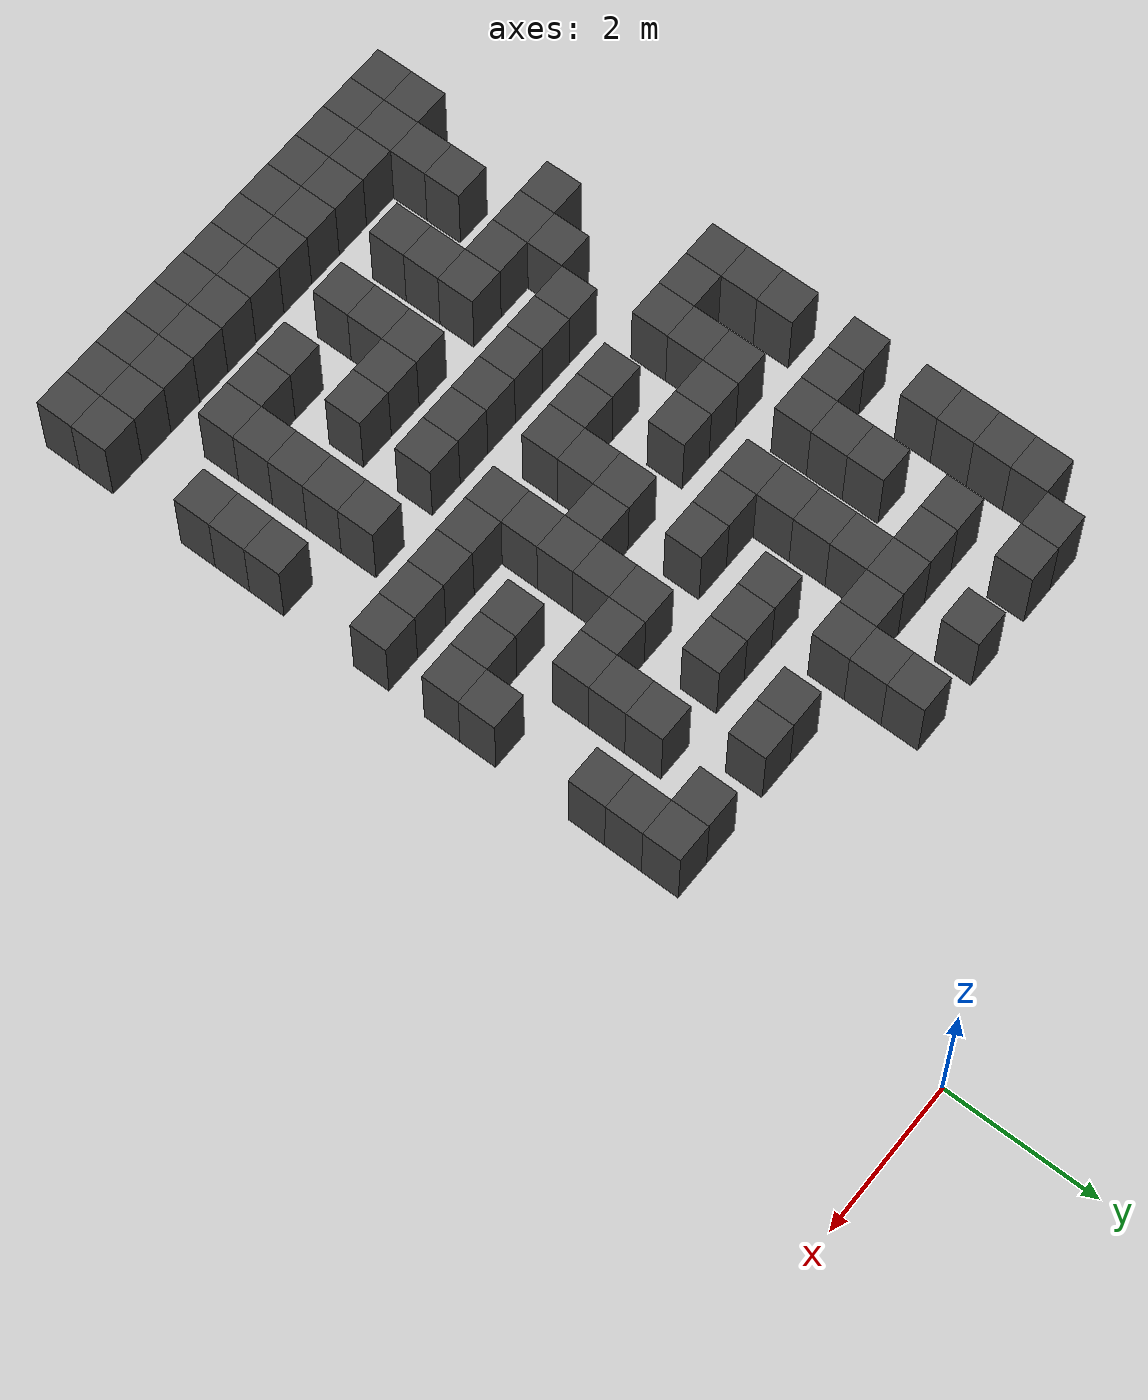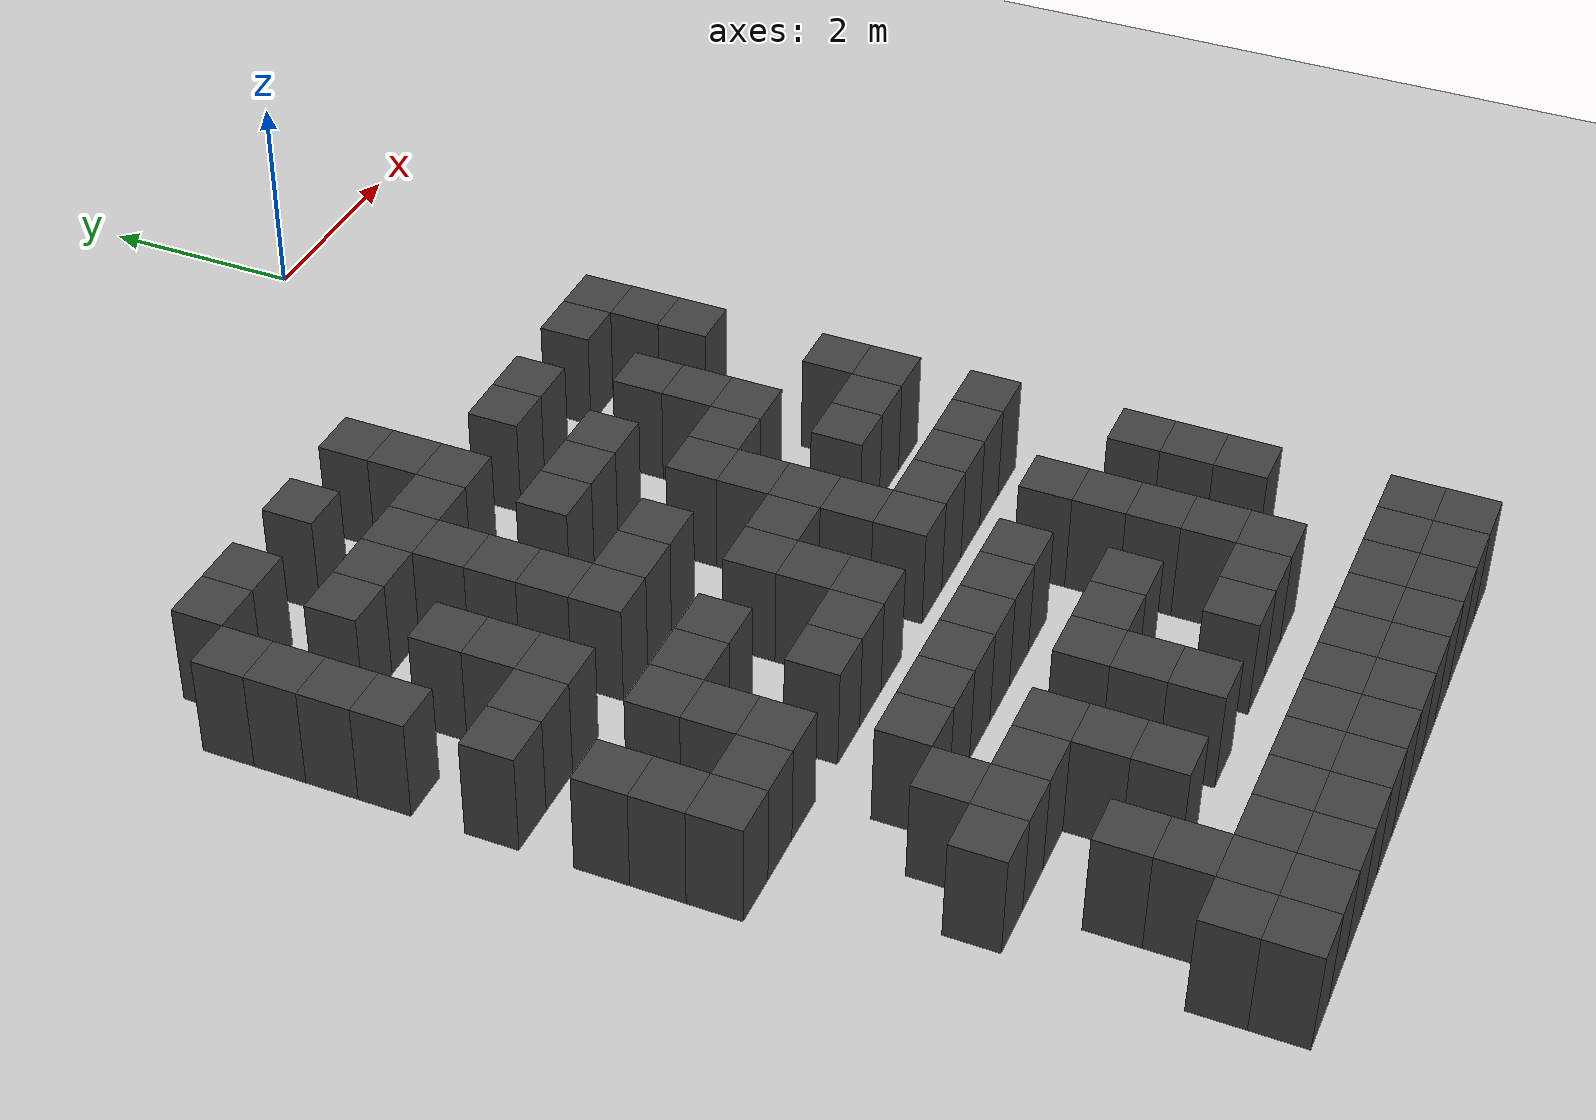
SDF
<sdf version="1.7">
 <world name="map_15293">
  <model name="ground_plane">
   <static>true</static>
   <link name="link">
    <collision name="collision">
     <geometry><plane><normal>0 0 1</normal><size>200 200</size></plane></geometry>
    </collision>
    <visual name="visual">
     <geometry><plane><normal>0 0 1</normal><size>200 200</size></plane></geometry>
     <material><ambient>0.8 0.8 0.8 1</ambient><diffuse>0.8 0.8 0.8 1</diffuse></material>
    </visual>
   </link>
  </model>
  <model name="maze_environment">
   <static>true</static>
   <link name="wall_709">
    <pose>-5.750 -2.750 0.500 0 0 0</pose>
    <collision name="col"><geometry><box><size>0.5 0.5 1.0</size></box></geometry></collision>
    <visual name="vis">
     <geometry><box><size>0.5 0.5 1.0</size></box></geometry>
     <material><ambient>0.15 0.15 0.15 1</ambient><diffuse>0.25 0.25 0.25 1</diffuse></material>
    </visual>
   </link>
   <link name="wall_710">
    <pose>-5.250 -2.750 0.500 0 0 0</pose>
    <collision name="col"><geometry><box><size>0.5 0.5 1.0</size></box></geometry></collision>
    <visual name="vis">
     <geometry><box><size>0.5 0.5 1.0</size></box></geometry>
     <material><ambient>0.15 0.15 0.15 1</ambient><diffuse>0.25 0.25 0.25 1</diffuse></material>
    </visual>
   </link>
   <link name="wall_711">
    <pose>-4.250 -2.750 0.500 0 0 0</pose>
    <collision name="col"><geometry><box><size>0.5 0.5 1.0</size></box></geometry></collision>
    <visual name="vis">
     <geometry><box><size>0.5 0.5 1.0</size></box></geometry>
     <material><ambient>0.15 0.15 0.15 1</ambient><diffuse>0.25 0.25 0.25 1</diffuse></material>
    </visual>
   </link>
   <link name="wall_712">
    <pose>-3.250 -2.750 0.500 0 0 0</pose>
    <collision name="col"><geometry><box><size>0.5 0.5 1.0</size></box></geometry></collision>
    <visual name="vis">
     <geometry><box><size>0.5 0.5 1.0</size></box></geometry>
     <material><ambient>0.15 0.15 0.15 1</ambient><diffuse>0.25 0.25 0.25 1</diffuse></material>
    </visual>
   </link>
   <link name="wall_742">
    <pose>-6.250 -3.250 0.500 0 0 0</pose>
    <collision name="col"><geometry><box><size>0.5 0.5 1.0</size></box></geometry></collision>
    <visual name="vis">
     <geometry><box><size>0.5 0.5 1.0</size></box></geometry>
     <material><ambient>0.15 0.15 0.15 1</ambient><diffuse>0.25 0.25 0.25 1</diffuse></material>
    </visual>
   </link>
   <link name="wall_743">
    <pose>-3.250 -3.250 0.500 0 0 0</pose>
    <collision name="col"><geometry><box><size>0.5 0.5 1.0</size></box></geometry></collision>
    <visual name="vis">
     <geometry><box><size>0.5 0.5 1.0</size></box></geometry>
     <material><ambient>0.15 0.15 0.15 1</ambient><diffuse>0.25 0.25 0.25 1</diffuse></material>
    </visual>
   </link>
   <link name="wall_757">
    <pose>-6.250 -3.750 0.500 0 0 0</pose>
    <collision name="col"><geometry><box><size>0.5 0.5 1.0</size></box></geometry></collision>
    <visual name="vis">
     <geometry><box><size>0.5 0.5 1.0</size></box></geometry>
     <material><ambient>0.15 0.15 0.15 1</ambient><diffuse>0.25 0.25 0.25 1</diffuse></material>
    </visual>
   </link>
   <link name="wall_758">
    <pose>-5.250 -3.750 0.500 0 0 0</pose>
    <collision name="col"><geometry><box><size>0.5 0.5 1.0</size></box></geometry></collision>
    <visual name="vis">
     <geometry><box><size>0.5 0.5 1.0</size></box></geometry>
     <material><ambient>0.15 0.15 0.15 1</ambient><diffuse>0.25 0.25 0.25 1</diffuse></material>
    </visual>
   </link>
   <link name="wall_759">
    <pose>-4.750 -3.750 0.500 0 0 0</pose>
    <collision name="col"><geometry><box><size>0.5 0.5 1.0</size></box></geometry></collision>
    <visual name="vis">
     <geometry><box><size>0.5 0.5 1.0</size></box></geometry>
     <material><ambient>0.15 0.15 0.15 1</ambient><diffuse>0.25 0.25 0.25 1</diffuse></material>
    </visual>
   </link>
   <link name="wall_760">
    <pose>-4.250 -3.750 0.500 0 0 0</pose>
    <collision name="col"><geometry><box><size>0.5 0.5 1.0</size></box></geometry></collision>
    <visual name="vis">
     <geometry><box><size>0.5 0.5 1.0</size></box></geometry>
     <material><ambient>0.15 0.15 0.15 1</ambient><diffuse>0.25 0.25 0.25 1</diffuse></material>
    </visual>
   </link>
   <link name="wall_761">
    <pose>-3.750 -3.750 0.500 0 0 0</pose>
    <collision name="col"><geometry><box><size>0.5 0.5 1.0</size></box></geometry></collision>
    <visual name="vis">
     <geometry><box><size>0.5 0.5 1.0</size></box></geometry>
     <material><ambient>0.15 0.15 0.15 1</ambient><diffuse>0.25 0.25 0.25 1</diffuse></material>
    </visual>
   </link>
   <link name="wall_762">
    <pose>-3.250 -3.750 0.500 0 0 0</pose>
    <collision name="col"><geometry><box><size>0.5 0.5 1.0</size></box></geometry></collision>
    <visual name="vis">
     <geometry><box><size>0.5 0.5 1.0</size></box></geometry>
     <material><ambient>0.15 0.15 0.15 1</ambient><diffuse>0.25 0.25 0.25 1</diffuse></material>
    </visual>
   </link>
   <link name="wall_763">
    <pose>-2.250 -3.750 0.500 0 0 0</pose>
    <collision name="col"><geometry><box><size>0.5 0.5 1.0</size></box></geometry></collision>
    <visual name="vis">
     <geometry><box><size>0.5 0.5 1.0</size></box></geometry>
     <material><ambient>0.15 0.15 0.15 1</ambient><diffuse>0.25 0.25 0.25 1</diffuse></material>
    </visual>
   </link>
   <link name="wall_764">
    <pose>-1.750 -3.750 0.500 0 0 0</pose>
    <collision name="col"><geometry><box><size>0.5 0.5 1.0</size></box></geometry></collision>
    <visual name="vis">
     <geometry><box><size>0.5 0.5 1.0</size></box></geometry>
     <material><ambient>0.15 0.15 0.15 1</ambient><diffuse>0.25 0.25 0.25 1</diffuse></material>
    </visual>
   </link>
   <link name="wall_765">
    <pose>-0.750 -3.750 0.500 0 0 0</pose>
    <collision name="col"><geometry><box><size>0.5 0.5 1.0</size></box></geometry></collision>
    <visual name="vis">
     <geometry><box><size>0.5 0.5 1.0</size></box></geometry>
     <material><ambient>0.15 0.15 0.15 1</ambient><diffuse>0.25 0.25 0.25 1</diffuse></material>
    </visual>
   </link>
   <link name="wall_766">
    <pose>-0.250 -3.750 0.500 0 0 0</pose>
    <collision name="col"><geometry><box><size>0.5 0.5 1.0</size></box></geometry></collision>
    <visual name="vis">
     <geometry><box><size>0.5 0.5 1.0</size></box></geometry>
     <material><ambient>0.15 0.15 0.15 1</ambient><diffuse>0.25 0.25 0.25 1</diffuse></material>
    </visual>
   </link>
   <link name="wall_782">
    <pose>-6.250 -4.250 0.500 0 0 0</pose>
    <collision name="col"><geometry><box><size>0.5 0.5 1.0</size></box></geometry></collision>
    <visual name="vis">
     <geometry><box><size>0.5 0.5 1.0</size></box></geometry>
     <material><ambient>0.15 0.15 0.15 1</ambient><diffuse>0.25 0.25 0.25 1</diffuse></material>
    </visual>
   </link>
   <link name="wall_783">
    <pose>-4.250 -4.250 0.500 0 0 0</pose>
    <collision name="col"><geometry><box><size>0.5 0.5 1.0</size></box></geometry></collision>
    <visual name="vis">
     <geometry><box><size>0.5 0.5 1.0</size></box></geometry>
     <material><ambient>0.15 0.15 0.15 1</ambient><diffuse>0.25 0.25 0.25 1</diffuse></material>
    </visual>
   </link>
   <link name="wall_784">
    <pose>-0.250 -4.250 0.500 0 0 0</pose>
    <collision name="col"><geometry><box><size>0.5 0.5 1.0</size></box></geometry></collision>
    <visual name="vis">
     <geometry><box><size>0.5 0.5 1.0</size></box></geometry>
     <material><ambient>0.15 0.15 0.15 1</ambient><diffuse>0.25 0.25 0.25 1</diffuse></material>
    </visual>
   </link>
   <link name="wall_798">
    <pose>-6.250 -4.750 0.500 0 0 0</pose>
    <collision name="col"><geometry><box><size>0.5 0.5 1.0</size></box></geometry></collision>
    <visual name="vis">
     <geometry><box><size>0.5 0.5 1.0</size></box></geometry>
     <material><ambient>0.15 0.15 0.15 1</ambient><diffuse>0.25 0.25 0.25 1</diffuse></material>
    </visual>
   </link>
   <link name="wall_799">
    <pose>-5.250 -4.750 0.500 0 0 0</pose>
    <collision name="col"><geometry><box><size>0.5 0.5 1.0</size></box></geometry></collision>
    <visual name="vis">
     <geometry><box><size>0.5 0.5 1.0</size></box></geometry>
     <material><ambient>0.15 0.15 0.15 1</ambient><diffuse>0.25 0.25 0.25 1</diffuse></material>
    </visual>
   </link>
   <link name="wall_800">
    <pose>-4.250 -4.750 0.500 0 0 0</pose>
    <collision name="col"><geometry><box><size>0.5 0.5 1.0</size></box></geometry></collision>
    <visual name="vis">
     <geometry><box><size>0.5 0.5 1.0</size></box></geometry>
     <material><ambient>0.15 0.15 0.15 1</ambient><diffuse>0.25 0.25 0.25 1</diffuse></material>
    </visual>
   </link>
   <link name="wall_801">
    <pose>-3.250 -4.750 0.500 0 0 0</pose>
    <collision name="col"><geometry><box><size>0.5 0.5 1.0</size></box></geometry></collision>
    <visual name="vis">
     <geometry><box><size>0.5 0.5 1.0</size></box></geometry>
     <material><ambient>0.15 0.15 0.15 1</ambient><diffuse>0.25 0.25 0.25 1</diffuse></material>
    </visual>
   </link>
   <link name="wall_802">
    <pose>-2.750 -4.750 0.500 0 0 0</pose>
    <collision name="col"><geometry><box><size>0.5 0.5 1.0</size></box></geometry></collision>
    <visual name="vis">
     <geometry><box><size>0.5 0.5 1.0</size></box></geometry>
     <material><ambient>0.15 0.15 0.15 1</ambient><diffuse>0.25 0.25 0.25 1</diffuse></material>
    </visual>
   </link>
   <link name="wall_803">
    <pose>-2.250 -4.750 0.500 0 0 0</pose>
    <collision name="col"><geometry><box><size>0.5 0.5 1.0</size></box></geometry></collision>
    <visual name="vis">
     <geometry><box><size>0.5 0.5 1.0</size></box></geometry>
     <material><ambient>0.15 0.15 0.15 1</ambient><diffuse>0.25 0.25 0.25 1</diffuse></material>
    </visual>
   </link>
   <link name="wall_804">
    <pose>-1.250 -4.750 0.500 0 0 0</pose>
    <collision name="col"><geometry><box><size>0.5 0.5 1.0</size></box></geometry></collision>
    <visual name="vis">
     <geometry><box><size>0.5 0.5 1.0</size></box></geometry>
     <material><ambient>0.15 0.15 0.15 1</ambient><diffuse>0.25 0.25 0.25 1</diffuse></material>
    </visual>
   </link>
   <link name="wall_805">
    <pose>-0.250 -4.750 0.500 0 0 0</pose>
    <collision name="col"><geometry><box><size>0.5 0.5 1.0</size></box></geometry></collision>
    <visual name="vis">
     <geometry><box><size>0.5 0.5 1.0</size></box></geometry>
     <material><ambient>0.15 0.15 0.15 1</ambient><diffuse>0.25 0.25 0.25 1</diffuse></material>
    </visual>
   </link>
   <link name="wall_822">
    <pose>-5.250 -5.250 0.500 0 0 0</pose>
    <collision name="col"><geometry><box><size>0.5 0.5 1.0</size></box></geometry></collision>
    <visual name="vis">
     <geometry><box><size>0.5 0.5 1.0</size></box></geometry>
     <material><ambient>0.15 0.15 0.15 1</ambient><diffuse>0.25 0.25 0.25 1</diffuse></material>
    </visual>
   </link>
   <link name="wall_823">
    <pose>-4.250 -5.250 0.500 0 0 0</pose>
    <collision name="col"><geometry><box><size>0.5 0.5 1.0</size></box></geometry></collision>
    <visual name="vis">
     <geometry><box><size>0.5 0.5 1.0</size></box></geometry>
     <material><ambient>0.15 0.15 0.15 1</ambient><diffuse>0.25 0.25 0.25 1</diffuse></material>
    </visual>
   </link>
   <link name="wall_824">
    <pose>-1.250 -5.250 0.500 0 0 0</pose>
    <collision name="col"><geometry><box><size>0.5 0.5 1.0</size></box></geometry></collision>
    <visual name="vis">
     <geometry><box><size>0.5 0.5 1.0</size></box></geometry>
     <material><ambient>0.15 0.15 0.15 1</ambient><diffuse>0.25 0.25 0.25 1</diffuse></material>
    </visual>
   </link>
   <link name="wall_844">
    <pose>-6.250 -5.750 0.500 0 0 0</pose>
    <collision name="col"><geometry><box><size>0.5 0.5 1.0</size></box></geometry></collision>
    <visual name="vis">
     <geometry><box><size>0.5 0.5 1.0</size></box></geometry>
     <material><ambient>0.15 0.15 0.15 1</ambient><diffuse>0.25 0.25 0.25 1</diffuse></material>
    </visual>
   </link>
   <link name="wall_845">
    <pose>-5.750 -5.750 0.500 0 0 0</pose>
    <collision name="col"><geometry><box><size>0.5 0.5 1.0</size></box></geometry></collision>
    <visual name="vis">
     <geometry><box><size>0.5 0.5 1.0</size></box></geometry>
     <material><ambient>0.15 0.15 0.15 1</ambient><diffuse>0.25 0.25 0.25 1</diffuse></material>
    </visual>
   </link>
   <link name="wall_846">
    <pose>-5.250 -5.750 0.500 0 0 0</pose>
    <collision name="col"><geometry><box><size>0.5 0.5 1.0</size></box></geometry></collision>
    <visual name="vis">
     <geometry><box><size>0.5 0.5 1.0</size></box></geometry>
     <material><ambient>0.15 0.15 0.15 1</ambient><diffuse>0.25 0.25 0.25 1</diffuse></material>
    </visual>
   </link>
   <link name="wall_847">
    <pose>-4.250 -5.750 0.500 0 0 0</pose>
    <collision name="col"><geometry><box><size>0.5 0.5 1.0</size></box></geometry></collision>
    <visual name="vis">
     <geometry><box><size>0.5 0.5 1.0</size></box></geometry>
     <material><ambient>0.15 0.15 0.15 1</ambient><diffuse>0.25 0.25 0.25 1</diffuse></material>
    </visual>
   </link>
   <link name="wall_848">
    <pose>-3.750 -5.750 0.500 0 0 0</pose>
    <collision name="col"><geometry><box><size>0.5 0.5 1.0</size></box></geometry></collision>
    <visual name="vis">
     <geometry><box><size>0.5 0.5 1.0</size></box></geometry>
     <material><ambient>0.15 0.15 0.15 1</ambient><diffuse>0.25 0.25 0.25 1</diffuse></material>
    </visual>
   </link>
   <link name="wall_849">
    <pose>-3.250 -5.750 0.500 0 0 0</pose>
    <collision name="col"><geometry><box><size>0.5 0.5 1.0</size></box></geometry></collision>
    <visual name="vis">
     <geometry><box><size>0.5 0.5 1.0</size></box></geometry>
     <material><ambient>0.15 0.15 0.15 1</ambient><diffuse>0.25 0.25 0.25 1</diffuse></material>
    </visual>
   </link>
   <link name="wall_850">
    <pose>-2.250 -5.750 0.500 0 0 0</pose>
    <collision name="col"><geometry><box><size>0.5 0.5 1.0</size></box></geometry></collision>
    <visual name="vis">
     <geometry><box><size>0.5 0.5 1.0</size></box></geometry>
     <material><ambient>0.15 0.15 0.15 1</ambient><diffuse>0.25 0.25 0.25 1</diffuse></material>
    </visual>
   </link>
   <link name="wall_851">
    <pose>-1.750 -5.750 0.500 0 0 0</pose>
    <collision name="col"><geometry><box><size>0.5 0.5 1.0</size></box></geometry></collision>
    <visual name="vis">
     <geometry><box><size>0.5 0.5 1.0</size></box></geometry>
     <material><ambient>0.15 0.15 0.15 1</ambient><diffuse>0.25 0.25 0.25 1</diffuse></material>
    </visual>
   </link>
   <link name="wall_852">
    <pose>-1.250 -5.750 0.500 0 0 0</pose>
    <collision name="col"><geometry><box><size>0.5 0.5 1.0</size></box></geometry></collision>
    <visual name="vis">
     <geometry><box><size>0.5 0.5 1.0</size></box></geometry>
     <material><ambient>0.15 0.15 0.15 1</ambient><diffuse>0.25 0.25 0.25 1</diffuse></material>
    </visual>
   </link>
   <link name="wall_871">
    <pose>-2.250 -6.250 0.500 0 0 0</pose>
    <collision name="col"><geometry><box><size>0.5 0.5 1.0</size></box></geometry></collision>
    <visual name="vis">
     <geometry><box><size>0.5 0.5 1.0</size></box></geometry>
     <material><ambient>0.15 0.15 0.15 1</ambient><diffuse>0.25 0.25 0.25 1</diffuse></material>
    </visual>
   </link>
   <link name="wall_872">
    <pose>-0.250 -6.250 0.500 0 0 0</pose>
    <collision name="col"><geometry><box><size>0.5 0.5 1.0</size></box></geometry></collision>
    <visual name="vis">
     <geometry><box><size>0.5 0.5 1.0</size></box></geometry>
     <material><ambient>0.15 0.15 0.15 1</ambient><diffuse>0.25 0.25 0.25 1</diffuse></material>
    </visual>
   </link>
   <link name="wall_887">
    <pose>-6.250 -6.750 0.500 0 0 0</pose>
    <collision name="col"><geometry><box><size>0.5 0.5 1.0</size></box></geometry></collision>
    <visual name="vis">
     <geometry><box><size>0.5 0.5 1.0</size></box></geometry>
     <material><ambient>0.15 0.15 0.15 1</ambient><diffuse>0.25 0.25 0.25 1</diffuse></material>
    </visual>
   </link>
   <link name="wall_888">
    <pose>-5.250 -6.750 0.500 0 0 0</pose>
    <collision name="col"><geometry><box><size>0.5 0.5 1.0</size></box></geometry></collision>
    <visual name="vis">
     <geometry><box><size>0.5 0.5 1.0</size></box></geometry>
     <material><ambient>0.15 0.15 0.15 1</ambient><diffuse>0.25 0.25 0.25 1</diffuse></material>
    </visual>
   </link>
   <link name="wall_889">
    <pose>-4.750 -6.750 0.500 0 0 0</pose>
    <collision name="col"><geometry><box><size>0.5 0.5 1.0</size></box></geometry></collision>
    <visual name="vis">
     <geometry><box><size>0.5 0.5 1.0</size></box></geometry>
     <material><ambient>0.15 0.15 0.15 1</ambient><diffuse>0.25 0.25 0.25 1</diffuse></material>
    </visual>
   </link>
   <link name="wall_890">
    <pose>-4.250 -6.750 0.500 0 0 0</pose>
    <collision name="col"><geometry><box><size>0.5 0.5 1.0</size></box></geometry></collision>
    <visual name="vis">
     <geometry><box><size>0.5 0.5 1.0</size></box></geometry>
     <material><ambient>0.15 0.15 0.15 1</ambient><diffuse>0.25 0.25 0.25 1</diffuse></material>
    </visual>
   </link>
   <link name="wall_891">
    <pose>-3.250 -6.750 0.500 0 0 0</pose>
    <collision name="col"><geometry><box><size>0.5 0.5 1.0</size></box></geometry></collision>
    <visual name="vis">
     <geometry><box><size>0.5 0.5 1.0</size></box></geometry>
     <material><ambient>0.15 0.15 0.15 1</ambient><diffuse>0.25 0.25 0.25 1</diffuse></material>
    </visual>
   </link>
   <link name="wall_892">
    <pose>-2.750 -6.750 0.500 0 0 0</pose>
    <collision name="col"><geometry><box><size>0.5 0.5 1.0</size></box></geometry></collision>
    <visual name="vis">
     <geometry><box><size>0.5 0.5 1.0</size></box></geometry>
     <material><ambient>0.15 0.15 0.15 1</ambient><diffuse>0.25 0.25 0.25 1</diffuse></material>
    </visual>
   </link>
   <link name="wall_893">
    <pose>-2.250 -6.750 0.500 0 0 0</pose>
    <collision name="col"><geometry><box><size>0.5 0.5 1.0</size></box></geometry></collision>
    <visual name="vis">
     <geometry><box><size>0.5 0.5 1.0</size></box></geometry>
     <material><ambient>0.15 0.15 0.15 1</ambient><diffuse>0.25 0.25 0.25 1</diffuse></material>
    </visual>
   </link>
   <link name="wall_894">
    <pose>-1.250 -6.750 0.500 0 0 0</pose>
    <collision name="col"><geometry><box><size>0.5 0.5 1.0</size></box></geometry></collision>
    <visual name="vis">
     <geometry><box><size>0.5 0.5 1.0</size></box></geometry>
     <material><ambient>0.15 0.15 0.15 1</ambient><diffuse>0.25 0.25 0.25 1</diffuse></material>
    </visual>
   </link>
   <link name="wall_895">
    <pose>-0.750 -6.750 0.500 0 0 0</pose>
    <collision name="col"><geometry><box><size>0.5 0.5 1.0</size></box></geometry></collision>
    <visual name="vis">
     <geometry><box><size>0.5 0.5 1.0</size></box></geometry>
     <material><ambient>0.15 0.15 0.15 1</ambient><diffuse>0.25 0.25 0.25 1</diffuse></material>
    </visual>
   </link>
   <link name="wall_896">
    <pose>-0.250 -6.750 0.500 0 0 0</pose>
    <collision name="col"><geometry><box><size>0.5 0.5 1.0</size></box></geometry></collision>
    <visual name="vis">
     <geometry><box><size>0.5 0.5 1.0</size></box></geometry>
     <material><ambient>0.15 0.15 0.15 1</ambient><diffuse>0.25 0.25 0.25 1</diffuse></material>
    </visual>
   </link>
   <link name="wall_918">
    <pose>-6.250 -7.250 0.500 0 0 0</pose>
    <collision name="col"><geometry><box><size>0.5 0.5 1.0</size></box></geometry></collision>
    <visual name="vis">
     <geometry><box><size>0.5 0.5 1.0</size></box></geometry>
     <material><ambient>0.15 0.15 0.15 1</ambient><diffuse>0.25 0.25 0.25 1</diffuse></material>
    </visual>
   </link>
   <link name="wall_919">
    <pose>-5.250 -7.250 0.500 0 0 0</pose>
    <collision name="col"><geometry><box><size>0.5 0.5 1.0</size></box></geometry></collision>
    <visual name="vis">
     <geometry><box><size>0.5 0.5 1.0</size></box></geometry>
     <material><ambient>0.15 0.15 0.15 1</ambient><diffuse>0.25 0.25 0.25 1</diffuse></material>
    </visual>
   </link>
   <link name="wall_920">
    <pose>-3.250 -7.250 0.500 0 0 0</pose>
    <collision name="col"><geometry><box><size>0.5 0.5 1.0</size></box></geometry></collision>
    <visual name="vis">
     <geometry><box><size>0.5 0.5 1.0</size></box></geometry>
     <material><ambient>0.15 0.15 0.15 1</ambient><diffuse>0.25 0.25 0.25 1</diffuse></material>
    </visual>
   </link>
   <link name="wall_921">
    <pose>-2.250 -7.250 0.500 0 0 0</pose>
    <collision name="col"><geometry><box><size>0.5 0.5 1.0</size></box></geometry></collision>
    <visual name="vis">
     <geometry><box><size>0.5 0.5 1.0</size></box></geometry>
     <material><ambient>0.15 0.15 0.15 1</ambient><diffuse>0.25 0.25 0.25 1</diffuse></material>
    </visual>
   </link>
   <link name="wall_932">
    <pose>-6.250 -7.750 0.500 0 0 0</pose>
    <collision name="col"><geometry><box><size>0.5 0.5 1.0</size></box></geometry></collision>
    <visual name="vis">
     <geometry><box><size>0.5 0.5 1.0</size></box></geometry>
     <material><ambient>0.15 0.15 0.15 1</ambient><diffuse>0.25 0.25 0.25 1</diffuse></material>
    </visual>
   </link>
   <link name="wall_933">
    <pose>-5.750 -7.750 0.500 0 0 0</pose>
    <collision name="col"><geometry><box><size>0.5 0.5 1.0</size></box></geometry></collision>
    <visual name="vis">
     <geometry><box><size>0.5 0.5 1.0</size></box></geometry>
     <material><ambient>0.15 0.15 0.15 1</ambient><diffuse>0.25 0.25 0.25 1</diffuse></material>
    </visual>
   </link>
   <link name="wall_934">
    <pose>-5.250 -7.750 0.500 0 0 0</pose>
    <collision name="col"><geometry><box><size>0.5 0.5 1.0</size></box></geometry></collision>
    <visual name="vis">
     <geometry><box><size>0.5 0.5 1.0</size></box></geometry>
     <material><ambient>0.15 0.15 0.15 1</ambient><diffuse>0.25 0.25 0.25 1</diffuse></material>
    </visual>
   </link>
   <link name="wall_935">
    <pose>-4.250 -7.750 0.500 0 0 0</pose>
    <collision name="col"><geometry><box><size>0.5 0.5 1.0</size></box></geometry></collision>
    <visual name="vis">
     <geometry><box><size>0.5 0.5 1.0</size></box></geometry>
     <material><ambient>0.15 0.15 0.15 1</ambient><diffuse>0.25 0.25 0.25 1</diffuse></material>
    </visual>
   </link>
   <link name="wall_936">
    <pose>-3.750 -7.750 0.500 0 0 0</pose>
    <collision name="col"><geometry><box><size>0.5 0.5 1.0</size></box></geometry></collision>
    <visual name="vis">
     <geometry><box><size>0.5 0.5 1.0</size></box></geometry>
     <material><ambient>0.15 0.15 0.15 1</ambient><diffuse>0.25 0.25 0.25 1</diffuse></material>
    </visual>
   </link>
   <link name="wall_937">
    <pose>-3.250 -7.750 0.500 0 0 0</pose>
    <collision name="col"><geometry><box><size>0.5 0.5 1.0</size></box></geometry></collision>
    <visual name="vis">
     <geometry><box><size>0.5 0.5 1.0</size></box></geometry>
     <material><ambient>0.15 0.15 0.15 1</ambient><diffuse>0.25 0.25 0.25 1</diffuse></material>
    </visual>
   </link>
   <link name="wall_938">
    <pose>-2.250 -7.750 0.500 0 0 0</pose>
    <collision name="col"><geometry><box><size>0.5 0.5 1.0</size></box></geometry></collision>
    <visual name="vis">
     <geometry><box><size>0.5 0.5 1.0</size></box></geometry>
     <material><ambient>0.15 0.15 0.15 1</ambient><diffuse>0.25 0.25 0.25 1</diffuse></material>
    </visual>
   </link>
   <link name="wall_939">
    <pose>-1.750 -7.750 0.500 0 0 0</pose>
    <collision name="col"><geometry><box><size>0.5 0.5 1.0</size></box></geometry></collision>
    <visual name="vis">
     <geometry><box><size>0.5 0.5 1.0</size></box></geometry>
     <material><ambient>0.15 0.15 0.15 1</ambient><diffuse>0.25 0.25 0.25 1</diffuse></material>
    </visual>
   </link>
   <link name="wall_940">
    <pose>-1.250 -7.750 0.500 0 0 0</pose>
    <collision name="col"><geometry><box><size>0.5 0.5 1.0</size></box></geometry></collision>
    <visual name="vis">
     <geometry><box><size>0.5 0.5 1.0</size></box></geometry>
     <material><ambient>0.15 0.15 0.15 1</ambient><diffuse>0.25 0.25 0.25 1</diffuse></material>
    </visual>
   </link>
   <link name="wall_941">
    <pose>-0.750 -7.750 0.500 0 0 0</pose>
    <collision name="col"><geometry><box><size>0.5 0.5 1.0</size></box></geometry></collision>
    <visual name="vis">
     <geometry><box><size>0.5 0.5 1.0</size></box></geometry>
     <material><ambient>0.15 0.15 0.15 1</ambient><diffuse>0.25 0.25 0.25 1</diffuse></material>
    </visual>
   </link>
   <link name="wall_942">
    <pose>-0.250 -7.750 0.500 0 0 0</pose>
    <collision name="col"><geometry><box><size>0.5 0.5 1.0</size></box></geometry></collision>
    <visual name="vis">
     <geometry><box><size>0.5 0.5 1.0</size></box></geometry>
     <material><ambient>0.15 0.15 0.15 1</ambient><diffuse>0.25 0.25 0.25 1</diffuse></material>
    </visual>
   </link>
   <link name="wall_983">
    <pose>-4.750 -8.750 0.500 0 0 0</pose>
    <collision name="col"><geometry><box><size>0.5 0.5 1.0</size></box></geometry></collision>
    <visual name="vis">
     <geometry><box><size>0.5 0.5 1.0</size></box></geometry>
     <material><ambient>0.15 0.15 0.15 1</ambient><diffuse>0.25 0.25 0.25 1</diffuse></material>
    </visual>
   </link>
   <link name="wall_984">
    <pose>-4.250 -8.750 0.500 0 0 0</pose>
    <collision name="col"><geometry><box><size>0.5 0.5 1.0</size></box></geometry></collision>
    <visual name="vis">
     <geometry><box><size>0.5 0.5 1.0</size></box></geometry>
     <material><ambient>0.15 0.15 0.15 1</ambient><diffuse>0.25 0.25 0.25 1</diffuse></material>
    </visual>
   </link>
   <link name="wall_985">
    <pose>-3.750 -8.750 0.500 0 0 0</pose>
    <collision name="col"><geometry><box><size>0.5 0.5 1.0</size></box></geometry></collision>
    <visual name="vis">
     <geometry><box><size>0.5 0.5 1.0</size></box></geometry>
     <material><ambient>0.15 0.15 0.15 1</ambient><diffuse>0.25 0.25 0.25 1</diffuse></material>
    </visual>
   </link>
   <link name="wall_986">
    <pose>-3.250 -8.750 0.500 0 0 0</pose>
    <collision name="col"><geometry><box><size>0.5 0.5 1.0</size></box></geometry></collision>
    <visual name="vis">
     <geometry><box><size>0.5 0.5 1.0</size></box></geometry>
     <material><ambient>0.15 0.15 0.15 1</ambient><diffuse>0.25 0.25 0.25 1</diffuse></material>
    </visual>
   </link>
   <link name="wall_987">
    <pose>-2.750 -8.750 0.500 0 0 0</pose>
    <collision name="col"><geometry><box><size>0.5 0.5 1.0</size></box></geometry></collision>
    <visual name="vis">
     <geometry><box><size>0.5 0.5 1.0</size></box></geometry>
     <material><ambient>0.15 0.15 0.15 1</ambient><diffuse>0.25 0.25 0.25 1</diffuse></material>
    </visual>
   </link>
   <link name="wall_988">
    <pose>-2.250 -8.750 0.500 0 0 0</pose>
    <collision name="col"><geometry><box><size>0.5 0.5 1.0</size></box></geometry></collision>
    <visual name="vis">
     <geometry><box><size>0.5 0.5 1.0</size></box></geometry>
     <material><ambient>0.15 0.15 0.15 1</ambient><diffuse>0.25 0.25 0.25 1</diffuse></material>
    </visual>
   </link>
   <link name="wall_989">
    <pose>-1.250 -8.750 0.500 0 0 0</pose>
    <collision name="col"><geometry><box><size>0.5 0.5 1.0</size></box></geometry></collision>
    <visual name="vis">
     <geometry><box><size>0.5 0.5 1.0</size></box></geometry>
     <material><ambient>0.15 0.15 0.15 1</ambient><diffuse>0.25 0.25 0.25 1</diffuse></material>
    </visual>
   </link>
   <link name="wall_1013">
    <pose>-5.250 -9.250 0.500 0 0 0</pose>
    <collision name="col"><geometry><box><size>0.5 0.5 1.0</size></box></geometry></collision>
    <visual name="vis">
     <geometry><box><size>0.5 0.5 1.0</size></box></geometry>
     <material><ambient>0.15 0.15 0.15 1</ambient><diffuse>0.25 0.25 0.25 1</diffuse></material>
    </visual>
   </link>
   <link name="wall_1014">
    <pose>-1.250 -9.250 0.500 0 0 0</pose>
    <collision name="col"><geometry><box><size>0.5 0.5 1.0</size></box></geometry></collision>
    <visual name="vis">
     <geometry><box><size>0.5 0.5 1.0</size></box></geometry>
     <material><ambient>0.15 0.15 0.15 1</ambient><diffuse>0.25 0.25 0.25 1</diffuse></material>
    </visual>
   </link>
   <link name="wall_1015">
    <pose>-0.250 -9.250 0.500 0 0 0</pose>
    <collision name="col"><geometry><box><size>0.5 0.5 1.0</size></box></geometry></collision>
    <visual name="vis">
     <geometry><box><size>0.5 0.5 1.0</size></box></geometry>
     <material><ambient>0.15 0.15 0.15 1</ambient><diffuse>0.25 0.25 0.25 1</diffuse></material>
    </visual>
   </link>
   <link name="wall_1031">
    <pose>-5.750 -9.750 0.500 0 0 0</pose>
    <collision name="col"><geometry><box><size>0.5 0.5 1.0</size></box></geometry></collision>
    <visual name="vis">
     <geometry><box><size>0.5 0.5 1.0</size></box></geometry>
     <material><ambient>0.15 0.15 0.15 1</ambient><diffuse>0.25 0.25 0.25 1</diffuse></material>
    </visual>
   </link>
   <link name="wall_1032">
    <pose>-5.250 -9.750 0.500 0 0 0</pose>
    <collision name="col"><geometry><box><size>0.5 0.5 1.0</size></box></geometry></collision>
    <visual name="vis">
     <geometry><box><size>0.5 0.5 1.0</size></box></geometry>
     <material><ambient>0.15 0.15 0.15 1</ambient><diffuse>0.25 0.25 0.25 1</diffuse></material>
    </visual>
   </link>
   <link name="wall_1033">
    <pose>-4.750 -9.750 0.500 0 0 0</pose>
    <collision name="col"><geometry><box><size>0.5 0.5 1.0</size></box></geometry></collision>
    <visual name="vis">
     <geometry><box><size>0.5 0.5 1.0</size></box></geometry>
     <material><ambient>0.15 0.15 0.15 1</ambient><diffuse>0.25 0.25 0.25 1</diffuse></material>
    </visual>
   </link>
   <link name="wall_1034">
    <pose>-4.250 -9.750 0.500 0 0 0</pose>
    <collision name="col"><geometry><box><size>0.5 0.5 1.0</size></box></geometry></collision>
    <visual name="vis">
     <geometry><box><size>0.5 0.5 1.0</size></box></geometry>
     <material><ambient>0.15 0.15 0.15 1</ambient><diffuse>0.25 0.25 0.25 1</diffuse></material>
    </visual>
   </link>
   <link name="wall_1035">
    <pose>-3.250 -9.750 0.500 0 0 0</pose>
    <collision name="col"><geometry><box><size>0.5 0.5 1.0</size></box></geometry></collision>
    <visual name="vis">
     <geometry><box><size>0.5 0.5 1.0</size></box></geometry>
     <material><ambient>0.15 0.15 0.15 1</ambient><diffuse>0.25 0.25 0.25 1</diffuse></material>
    </visual>
   </link>
   <link name="wall_1036">
    <pose>-2.750 -9.750 0.500 0 0 0</pose>
    <collision name="col"><geometry><box><size>0.5 0.5 1.0</size></box></geometry></collision>
    <visual name="vis">
     <geometry><box><size>0.5 0.5 1.0</size></box></geometry>
     <material><ambient>0.15 0.15 0.15 1</ambient><diffuse>0.25 0.25 0.25 1</diffuse></material>
    </visual>
   </link>
   <link name="wall_1037">
    <pose>-2.250 -9.750 0.500 0 0 0</pose>
    <collision name="col"><geometry><box><size>0.5 0.5 1.0</size></box></geometry></collision>
    <visual name="vis">
     <geometry><box><size>0.5 0.5 1.0</size></box></geometry>
     <material><ambient>0.15 0.15 0.15 1</ambient><diffuse>0.25 0.25 0.25 1</diffuse></material>
    </visual>
   </link>
   <link name="wall_1038">
    <pose>-1.250 -9.750 0.500 0 0 0</pose>
    <collision name="col"><geometry><box><size>0.5 0.5 1.0</size></box></geometry></collision>
    <visual name="vis">
     <geometry><box><size>0.5 0.5 1.0</size></box></geometry>
     <material><ambient>0.15 0.15 0.15 1</ambient><diffuse>0.25 0.25 0.25 1</diffuse></material>
    </visual>
   </link>
   <link name="wall_1039">
    <pose>-0.250 -9.750 0.500 0 0 0</pose>
    <collision name="col"><geometry><box><size>0.5 0.5 1.0</size></box></geometry></collision>
    <visual name="vis">
     <geometry><box><size>0.5 0.5 1.0</size></box></geometry>
     <material><ambient>0.15 0.15 0.15 1</ambient><diffuse>0.25 0.25 0.25 1</diffuse></material>
    </visual>
   </link>
   <link name="wall_1056">
    <pose>-4.250 -10.250 0.500 0 0 0</pose>
    <collision name="col"><geometry><box><size>0.5 0.5 1.0</size></box></geometry></collision>
    <visual name="vis">
     <geometry><box><size>0.5 0.5 1.0</size></box></geometry>
     <material><ambient>0.15 0.15 0.15 1</ambient><diffuse>0.25 0.25 0.25 1</diffuse></material>
    </visual>
   </link>
   <link name="wall_1057">
    <pose>-3.250 -10.250 0.500 0 0 0</pose>
    <collision name="col"><geometry><box><size>0.5 0.5 1.0</size></box></geometry></collision>
    <visual name="vis">
     <geometry><box><size>0.5 0.5 1.0</size></box></geometry>
     <material><ambient>0.15 0.15 0.15 1</ambient><diffuse>0.25 0.25 0.25 1</diffuse></material>
    </visual>
   </link>
   <link name="wall_1058">
    <pose>-1.250 -10.250 0.500 0 0 0</pose>
    <collision name="col"><geometry><box><size>0.5 0.5 1.0</size></box></geometry></collision>
    <visual name="vis">
     <geometry><box><size>0.5 0.5 1.0</size></box></geometry>
     <material><ambient>0.15 0.15 0.15 1</ambient><diffuse>0.25 0.25 0.25 1</diffuse></material>
    </visual>
   </link>
   <link name="wall_1059">
    <pose>-0.250 -10.250 0.500 0 0 0</pose>
    <collision name="col"><geometry><box><size>0.5 0.5 1.0</size></box></geometry></collision>
    <visual name="vis">
     <geometry><box><size>0.5 0.5 1.0</size></box></geometry>
     <material><ambient>0.15 0.15 0.15 1</ambient><diffuse>0.25 0.25 0.25 1</diffuse></material>
    </visual>
   </link>
   <link name="wall_1076">
    <pose>-5.250 -10.750 0.500 0 0 0</pose>
    <collision name="col"><geometry><box><size>0.5 0.5 1.0</size></box></geometry></collision>
    <visual name="vis">
     <geometry><box><size>0.5 0.5 1.0</size></box></geometry>
     <material><ambient>0.15 0.15 0.15 1</ambient><diffuse>0.25 0.25 0.25 1</diffuse></material>
    </visual>
   </link>
   <link name="wall_1077">
    <pose>-4.250 -10.750 0.500 0 0 0</pose>
    <collision name="col"><geometry><box><size>0.5 0.5 1.0</size></box></geometry></collision>
    <visual name="vis">
     <geometry><box><size>0.5 0.5 1.0</size></box></geometry>
     <material><ambient>0.15 0.15 0.15 1</ambient><diffuse>0.25 0.25 0.25 1</diffuse></material>
    </visual>
   </link>
   <link name="wall_1078">
    <pose>-3.250 -10.750 0.500 0 0 0</pose>
    <collision name="col"><geometry><box><size>0.5 0.5 1.0</size></box></geometry></collision>
    <visual name="vis">
     <geometry><box><size>0.5 0.5 1.0</size></box></geometry>
     <material><ambient>0.15 0.15 0.15 1</ambient><diffuse>0.25 0.25 0.25 1</diffuse></material>
    </visual>
   </link>
   <link name="wall_1079">
    <pose>-2.250 -10.750 0.500 0 0 0</pose>
    <collision name="col"><geometry><box><size>0.5 0.5 1.0</size></box></geometry></collision>
    <visual name="vis">
     <geometry><box><size>0.5 0.5 1.0</size></box></geometry>
     <material><ambient>0.15 0.15 0.15 1</ambient><diffuse>0.25 0.25 0.25 1</diffuse></material>
    </visual>
   </link>
   <link name="wall_1080">
    <pose>-1.750 -10.750 0.500 0 0 0</pose>
    <collision name="col"><geometry><box><size>0.5 0.5 1.0</size></box></geometry></collision>
    <visual name="vis">
     <geometry><box><size>0.5 0.5 1.0</size></box></geometry>
     <material><ambient>0.15 0.15 0.15 1</ambient><diffuse>0.25 0.25 0.25 1</diffuse></material>
    </visual>
   </link>
   <link name="wall_1081">
    <pose>-1.250 -10.750 0.500 0 0 0</pose>
    <collision name="col"><geometry><box><size>0.5 0.5 1.0</size></box></geometry></collision>
    <visual name="vis">
     <geometry><box><size>0.5 0.5 1.0</size></box></geometry>
     <material><ambient>0.15 0.15 0.15 1</ambient><diffuse>0.25 0.25 0.25 1</diffuse></material>
    </visual>
   </link>
   <link name="wall_1102">
    <pose>-5.250 -11.250 0.500 0 0 0</pose>
    <collision name="col"><geometry><box><size>0.5 0.5 1.0</size></box></geometry></collision>
    <visual name="vis">
     <geometry><box><size>0.5 0.5 1.0</size></box></geometry>
     <material><ambient>0.15 0.15 0.15 1</ambient><diffuse>0.25 0.25 0.25 1</diffuse></material>
    </visual>
   </link>
   <link name="wall_1119">
    <pose>-5.750 -11.750 0.500 0 0 0</pose>
    <collision name="col"><geometry><box><size>0.5 0.5 1.0</size></box></geometry></collision>
    <visual name="vis">
     <geometry><box><size>0.5 0.5 1.0</size></box></geometry>
     <material><ambient>0.15 0.15 0.15 1</ambient><diffuse>0.25 0.25 0.25 1</diffuse></material>
    </visual>
   </link>
   <link name="wall_1120">
    <pose>-5.250 -11.750 0.500 0 0 0</pose>
    <collision name="col"><geometry><box><size>0.5 0.5 1.0</size></box></geometry></collision>
    <visual name="vis">
     <geometry><box><size>0.5 0.5 1.0</size></box></geometry>
     <material><ambient>0.15 0.15 0.15 1</ambient><diffuse>0.25 0.25 0.25 1</diffuse></material>
    </visual>
   </link>
   <link name="wall_1121">
    <pose>-4.750 -11.750 0.500 0 0 0</pose>
    <collision name="col"><geometry><box><size>0.5 0.5 1.0</size></box></geometry></collision>
    <visual name="vis">
     <geometry><box><size>0.5 0.5 1.0</size></box></geometry>
     <material><ambient>0.15 0.15 0.15 1</ambient><diffuse>0.25 0.25 0.25 1</diffuse></material>
    </visual>
   </link>
   <link name="wall_1122">
    <pose>-4.250 -11.750 0.500 0 0 0</pose>
    <collision name="col"><geometry><box><size>0.5 0.5 1.0</size></box></geometry></collision>
    <visual name="vis">
     <geometry><box><size>0.5 0.5 1.0</size></box></geometry>
     <material><ambient>0.15 0.15 0.15 1</ambient><diffuse>0.25 0.25 0.25 1</diffuse></material>
    </visual>
   </link>
   <link name="wall_1123">
    <pose>-3.750 -11.750 0.500 0 0 0</pose>
    <collision name="col"><geometry><box><size>0.5 0.5 1.0</size></box></geometry></collision>
    <visual name="vis">
     <geometry><box><size>0.5 0.5 1.0</size></box></geometry>
     <material><ambient>0.15 0.15 0.15 1</ambient><diffuse>0.25 0.25 0.25 1</diffuse></material>
    </visual>
   </link>
   <link name="wall_1124">
    <pose>-3.250 -11.750 0.500 0 0 0</pose>
    <collision name="col"><geometry><box><size>0.5 0.5 1.0</size></box></geometry></collision>
    <visual name="vis">
     <geometry><box><size>0.5 0.5 1.0</size></box></geometry>
     <material><ambient>0.15 0.15 0.15 1</ambient><diffuse>0.25 0.25 0.25 1</diffuse></material>
    </visual>
   </link>
   <link name="wall_1125">
    <pose>-2.750 -11.750 0.500 0 0 0</pose>
    <collision name="col"><geometry><box><size>0.5 0.5 1.0</size></box></geometry></collision>
    <visual name="vis">
     <geometry><box><size>0.5 0.5 1.0</size></box></geometry>
     <material><ambient>0.15 0.15 0.15 1</ambient><diffuse>0.25 0.25 0.25 1</diffuse></material>
    </visual>
   </link>
   <link name="wall_1126">
    <pose>-2.250 -11.750 0.500 0 0 0</pose>
    <collision name="col"><geometry><box><size>0.5 0.5 1.0</size></box></geometry></collision>
    <visual name="vis">
     <geometry><box><size>0.5 0.5 1.0</size></box></geometry>
     <material><ambient>0.15 0.15 0.15 1</ambient><diffuse>0.25 0.25 0.25 1</diffuse></material>
    </visual>
   </link>
   <link name="wall_1127">
    <pose>-1.750 -11.750 0.500 0 0 0</pose>
    <collision name="col"><geometry><box><size>0.5 0.5 1.0</size></box></geometry></collision>
    <visual name="vis">
     <geometry><box><size>0.5 0.5 1.0</size></box></geometry>
     <material><ambient>0.15 0.15 0.15 1</ambient><diffuse>0.25 0.25 0.25 1</diffuse></material>
    </visual>
   </link>
   <link name="wall_1128">
    <pose>-1.250 -11.750 0.500 0 0 0</pose>
    <collision name="col"><geometry><box><size>0.5 0.5 1.0</size></box></geometry></collision>
    <visual name="vis">
     <geometry><box><size>0.5 0.5 1.0</size></box></geometry>
     <material><ambient>0.15 0.15 0.15 1</ambient><diffuse>0.25 0.25 0.25 1</diffuse></material>
    </visual>
   </link>
   <link name="wall_1129">
    <pose>-0.750 -11.750 0.500 0 0 0</pose>
    <collision name="col"><geometry><box><size>0.5 0.5 1.0</size></box></geometry></collision>
    <visual name="vis">
     <geometry><box><size>0.5 0.5 1.0</size></box></geometry>
     <material><ambient>0.15 0.15 0.15 1</ambient><diffuse>0.25 0.25 0.25 1</diffuse></material>
    </visual>
   </link>
   <link name="wall_1130">
    <pose>-0.250 -11.750 0.500 0 0 0</pose>
    <collision name="col"><geometry><box><size>0.5 0.5 1.0</size></box></geometry></collision>
    <visual name="vis">
     <geometry><box><size>0.5 0.5 1.0</size></box></geometry>
     <material><ambient>0.15 0.15 0.15 1</ambient><diffuse>0.25 0.25 0.25 1</diffuse></material>
    </visual>
   </link>
   <link name="wall_1167">
    <pose>-5.750 -12.250 0.500 0 0 0</pose>
    <collision name="col"><geometry><box><size>0.5 0.5 1.0</size></box></geometry></collision>
    <visual name="vis">
     <geometry><box><size>0.5 0.5 1.0</size></box></geometry>
     <material><ambient>0.15 0.15 0.15 1</ambient><diffuse>0.25 0.25 0.25 1</diffuse></material>
    </visual>
   </link>
   <link name="wall_1168">
    <pose>-5.250 -12.250 0.500 0 0 0</pose>
    <collision name="col"><geometry><box><size>0.5 0.5 1.0</size></box></geometry></collision>
    <visual name="vis">
     <geometry><box><size>0.5 0.5 1.0</size></box></geometry>
     <material><ambient>0.15 0.15 0.15 1</ambient><diffuse>0.25 0.25 0.25 1</diffuse></material>
    </visual>
   </link>
   <link name="wall_1169">
    <pose>-4.750 -12.250 0.500 0 0 0</pose>
    <collision name="col"><geometry><box><size>0.5 0.5 1.0</size></box></geometry></collision>
    <visual name="vis">
     <geometry><box><size>0.5 0.5 1.0</size></box></geometry>
     <material><ambient>0.15 0.15 0.15 1</ambient><diffuse>0.25 0.25 0.25 1</diffuse></material>
    </visual>
   </link>
   <link name="wall_1170">
    <pose>-4.250 -12.250 0.500 0 0 0</pose>
    <collision name="col"><geometry><box><size>0.5 0.5 1.0</size></box></geometry></collision>
    <visual name="vis">
     <geometry><box><size>0.5 0.5 1.0</size></box></geometry>
     <material><ambient>0.15 0.15 0.15 1</ambient><diffuse>0.25 0.25 0.25 1</diffuse></material>
    </visual>
   </link>
   <link name="wall_1171">
    <pose>-3.750 -12.250 0.500 0 0 0</pose>
    <collision name="col"><geometry><box><size>0.5 0.5 1.0</size></box></geometry></collision>
    <visual name="vis">
     <geometry><box><size>0.5 0.5 1.0</size></box></geometry>
     <material><ambient>0.15 0.15 0.15 1</ambient><diffuse>0.25 0.25 0.25 1</diffuse></material>
    </visual>
   </link>
   <link name="wall_1172">
    <pose>-3.250 -12.250 0.500 0 0 0</pose>
    <collision name="col"><geometry><box><size>0.5 0.5 1.0</size></box></geometry></collision>
    <visual name="vis">
     <geometry><box><size>0.5 0.5 1.0</size></box></geometry>
     <material><ambient>0.15 0.15 0.15 1</ambient><diffuse>0.25 0.25 0.25 1</diffuse></material>
    </visual>
   </link>
   <link name="wall_1173">
    <pose>-2.750 -12.250 0.500 0 0 0</pose>
    <collision name="col"><geometry><box><size>0.5 0.5 1.0</size></box></geometry></collision>
    <visual name="vis">
     <geometry><box><size>0.5 0.5 1.0</size></box></geometry>
     <material><ambient>0.15 0.15 0.15 1</ambient><diffuse>0.25 0.25 0.25 1</diffuse></material>
    </visual>
   </link>
   <link name="wall_1174">
    <pose>-2.250 -12.250 0.500 0 0 0</pose>
    <collision name="col"><geometry><box><size>0.5 0.5 1.0</size></box></geometry></collision>
    <visual name="vis">
     <geometry><box><size>0.5 0.5 1.0</size></box></geometry>
     <material><ambient>0.15 0.15 0.15 1</ambient><diffuse>0.25 0.25 0.25 1</diffuse></material>
    </visual>
   </link>
   <link name="wall_1175">
    <pose>-1.750 -12.250 0.500 0 0 0</pose>
    <collision name="col"><geometry><box><size>0.5 0.5 1.0</size></box></geometry></collision>
    <visual name="vis">
     <geometry><box><size>0.5 0.5 1.0</size></box></geometry>
     <material><ambient>0.15 0.15 0.15 1</ambient><diffuse>0.25 0.25 0.25 1</diffuse></material>
    </visual>
   </link>
   <link name="wall_1176">
    <pose>-1.250 -12.250 0.500 0 0 0</pose>
    <collision name="col"><geometry><box><size>0.5 0.5 1.0</size></box></geometry></collision>
    <visual name="vis">
     <geometry><box><size>0.5 0.5 1.0</size></box></geometry>
     <material><ambient>0.15 0.15 0.15 1</ambient><diffuse>0.25 0.25 0.25 1</diffuse></material>
    </visual>
   </link>
   <link name="wall_1177">
    <pose>-0.750 -12.250 0.500 0 0 0</pose>
    <collision name="col"><geometry><box><size>0.5 0.5 1.0</size></box></geometry></collision>
    <visual name="vis">
     <geometry><box><size>0.5 0.5 1.0</size></box></geometry>
     <material><ambient>0.15 0.15 0.15 1</ambient><diffuse>0.25 0.25 0.25 1</diffuse></material>
    </visual>
   </link>
   <link name="wall_1178">
    <pose>-0.250 -12.250 0.500 0 0 0</pose>
    <collision name="col"><geometry><box><size>0.5 0.5 1.0</size></box></geometry></collision>
    <visual name="vis">
     <geometry><box><size>0.5 0.5 1.0</size></box></geometry>
     <material><ambient>0.15 0.15 0.15 1</ambient><diffuse>0.25 0.25 0.25 1</diffuse></material>
    </visual>
   </link>
  </model>
 </world>
</sdf>
